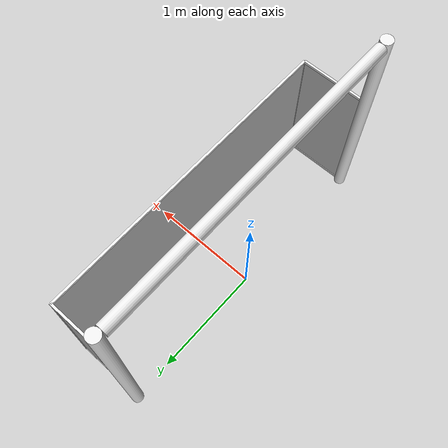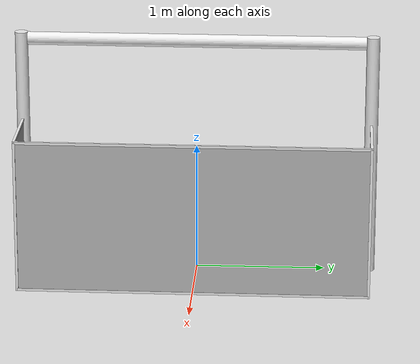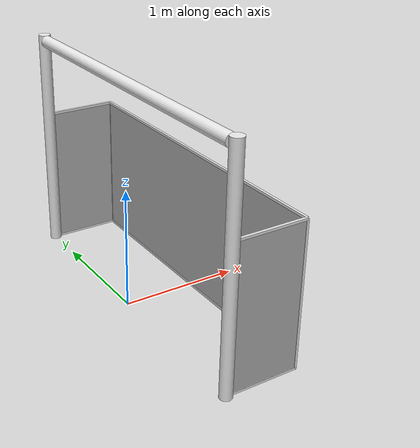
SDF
<?xml version="1.0" ?>
<sdf version="1.4">
  <model name="teensize_goal">
    <static>true</static>
    <link name="left_post">
      <pose>0 1.35 0.95 0 0 0</pose>
      <collision name="collision">
        <geometry>
          <cylinder>
            <radius>0.05</radius>
            <length>1.9</length>
          </cylinder>
        </geometry>
      </collision>
      <visual name="visual">
        <geometry>
          <cylinder>
            <radius>0.05</radius>
            <length>1.9</length>
          </cylinder>
        </geometry>
        <material>
          <script>
            <uri>file://media/materials/scripts/gazebo.material</uri>
            <name>Gazebo/White</name>
          </script>
        </material>
      </visual>
    </link>
    <link name="left_support_horiz_lower">
      <pose>0.3 1.35 0.01 0 0 0</pose>
      <collision name="collision">
        <geometry>
          <box>
            <size>0.6 0.02 0.02</size>
          </box>
        </geometry>
      </collision>
      <visual name="visual">
        <geometry>
          <box>
            <size>0.6 0.02 0.02</size>
          </box>
        </geometry>
        <material>
          <script>
            <uri>file://media/materials/scripts/gazebo.material</uri>
            <name>Gazebo/White</name>
          </script>
        </material>
      </visual>
    </link>
    <link name="left_support_horiz_upper">
      <pose>0.3 1.35 1.2 0 0 0</pose>
      <collision name="collision">
        <geometry>
          <box>
            <size>0.6 0.02 0.02</size>
          </box>
        </geometry>
      </collision>
      <visual name="visual">
        <geometry>
          <box>
            <size>0.6 0.02 0.02</size>
          </box>
        </geometry>
        <material>
          <script>
            <uri>file://media/materials/scripts/gazebo.material</uri>
            <name>Gazebo/White</name>
          </script>
        </material>
      </visual>
    </link>
    <link name="left_support_vertical">
      <pose>0.6 1.35 0.6 0 1.5708 0</pose>
      <collision name="collision">
        <geometry>
          <box>
            <size>1.2 0.02 0.02</size>
          </box>
        </geometry>
      </collision>
      <visual name="visual">
        <geometry>
          <box>
            <size>1.2 0.02 0.02</size>
          </box>
        </geometry>
        <material>
          <script>
            <uri>file://media/materials/scripts/gazebo.material</uri>
            <name>Gazebo/White</name>
          </script>
        </material>
      </visual>
    </link>
    <link name="right_support_horiz_lower">
      <pose>0.3 -1.35 0.01 0 0 0</pose>
      <collision name="collision">
        <geometry>
          <box>
            <size>0.6 0.02 0.02</size>
          </box>
        </geometry>
      </collision>
      <visual name="visual">
        <geometry>
          <box>
            <size>0.6 0.02 0.02</size>
          </box>
        </geometry>
        <material>
          <script>
            <uri>file://media/materials/scripts/gazebo.material</uri>
            <name>Gazebo/White</name>
          </script>
        </material>
      </visual>
    </link>
    <link name="right_support_horiz_upper">
      <pose>0.3 -1.35 1.2 0 0 0</pose>
      <collision name="collision">
        <geometry>
          <box>
            <size>0.6 0.02 0.02</size>
          </box>
        </geometry>
      </collision>
      <visual name="visual">
        <geometry>
          <box>
            <size>0.6 0.02 0.02</size>
          </box>
        </geometry>
        <material>
          <script>
            <uri>file://media/materials/scripts/gazebo.material</uri>
            <name>Gazebo/White</name>
          </script>
        </material>
      </visual>
    </link>
    <link name="right_support_vertical">
      <pose>0.6 -1.35 0.6 0 1.5708 0</pose>
      <collision name="collision">
        <geometry>
          <box>
            <size>1.2 0.02 0.02</size>
          </box>
        </geometry>
      </collision>
      <visual name="visual">
        <geometry>
          <box>
            <size>1.2 0.02 0.02</size>
          </box>
        </geometry>
        <material>
          <script>
            <uri>file://media/materials/scripts/gazebo.material</uri>
            <name>Gazebo/White</name>
          </script>
        </material>
      </visual>
    </link>
    <link name="center_support_horiz_lower">
      <pose>0.6 0 0.01 0 1.5708 0</pose>
      <collision name="collision">
        <geometry>
          <box>
            <size>0.02 2.7 0.02</size>
          </box>
        </geometry>
      </collision>
      <visual name="visual">
        <geometry>
          <box>
            <size>0.02 2.7 0.02</size>
          </box>
        </geometry>
        <material>
          <script>
            <uri>file://media/materials/scripts/gazebo.material</uri>
            <name>Gazebo/White</name>
          </script>
        </material>
      </visual>
    </link>
    <link name="center_support_horiz_upper">
      <pose>0.6 0 1.2 0 1.5708 0</pose>
      <collision name="collision">
        <geometry>
          <box>
            <size>0.02 2.7 0.02</size>
          </box>
        </geometry>
      </collision>
      <visual name="visual">
        <geometry>
          <box>
            <size>0.02 2.7 0.02</size>
          </box>
        </geometry>
        <material>
          <script>
            <uri>file://media/materials/scripts/gazebo.material</uri>
            <name>Gazebo/White</name>
          </script>
        </material>
      </visual>
    </link>
    <link name="right_post">
      <pose>0 -1.35 0.95 0 0 0</pose>
      <collision name="collision">
        <geometry>
          <cylinder>
            <radius>0.05</radius>
            <length>1.9</length>
          </cylinder>
        </geometry>
      </collision>
      <visual name="visual">
        <geometry>
          <cylinder>
            <radius>0.05</radius>
            <length>1.9</length>
          </cylinder>
        </geometry>
        <material>
          <script>
            <uri>file://media/materials/scripts/gazebo.material</uri>
            <name>Gazebo/White</name>
          </script>
        </material>
      </visual>
    </link>
    <link name="crossbar">
      <pose>0 0 1.85 1.57 1.57 0</pose>
      <collision name="collision">
        <geometry>
          <cylinder>
            <radius>0.05</radius>
            <length>2.6</length>
          </cylinder>
        </geometry>
      </collision>
      <visual name="visual">
        <geometry>
          <cylinder>
            <radius>0.05</radius>
            <length>2.6</length>
          </cylinder>
        </geometry>
        <material>
          <script>
            <uri>file://media/materials/scripts/gazebo.material</uri>
            <name>Gazebo/White</name>
          </script>
        </material>
      </visual>
    </link>
    <link name="center_net">
      <pose>0.6 0 0.6 0 0 0</pose>
      <collision name="collision">
        <geometry>
          <box>
            <size>0.01 2.7 1.2</size>
          </box>
        </geometry>
      </collision>
      <visual name="visual">
        <geometry>
          <box>
            <size>0.01 2.7 1.2</size>
          </box>
        </geometry>
        <material>
          <script>
            <uri>model://teensize_goal/materials/scripts/</uri>
            <uri>model://teensize_goal/materials/textures/</uri>
            <name>RoboCup/Net</name>
          </script>
        </material>
      </visual>
    </link>
    <link name="left_net">
      <pose>0.3 1.35 0.6 0 0 0</pose>
      <collision name="collision">
        <geometry>
          <box>
            <size>0.6 0.01 1.2</size>
          </box>
        </geometry>
      </collision>
      <visual name="visual">
        <geometry>
          <box>
            <size>0.6 0.01 1.2</size>
          </box>
        </geometry>
        <material>
          <script>
            <uri>model://teensize_goal/materials/scripts/</uri>
            <uri>model://teensize_goal/materials/textures/</uri>
            <name>RoboCup/Net</name>
          </script>
        </material>
      </visual>
    </link>
    <link name="right_net">
      <pose>0.3 -1.35 0.6 0 0 0</pose>
      <collision name="collision">
        <geometry>
          <box>
            <size>0.6 0.01 1.2</size>
          </box>
        </geometry>
      </collision>
      <visual name="visual">
        <geometry>
          <box>
            <size>0.6 0.01 1.2</size>
          </box>
        </geometry>
        <material>
          <script>
            <uri>model://teensize_goal/materials/scripts/</uri>
            <uri>model://teensize_goal/materials/textures/</uri>
            <name>RoboCup/Net</name>
          </script>
        </material>
      </visual>
    </link>
  </model>
</sdf>
